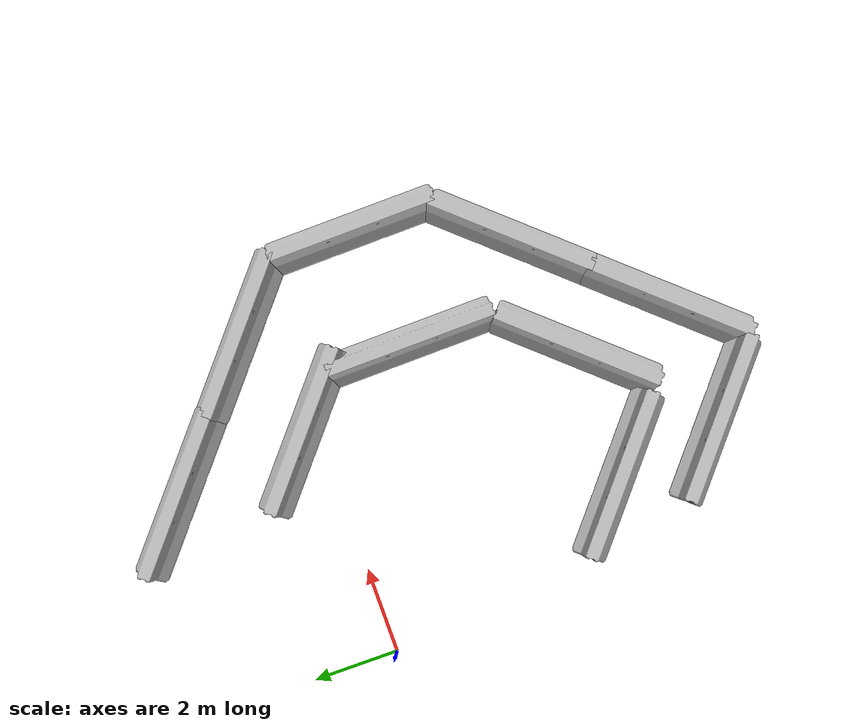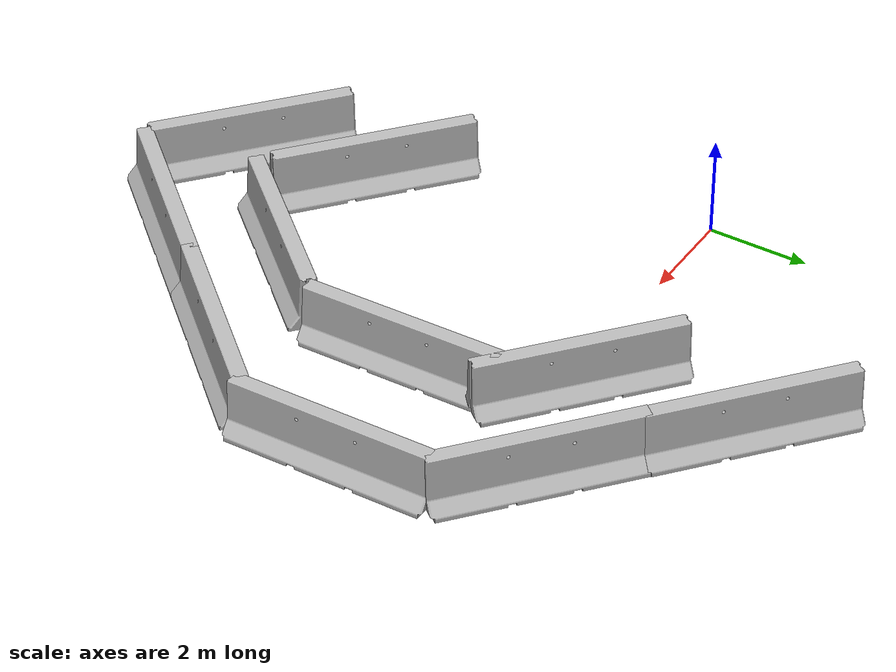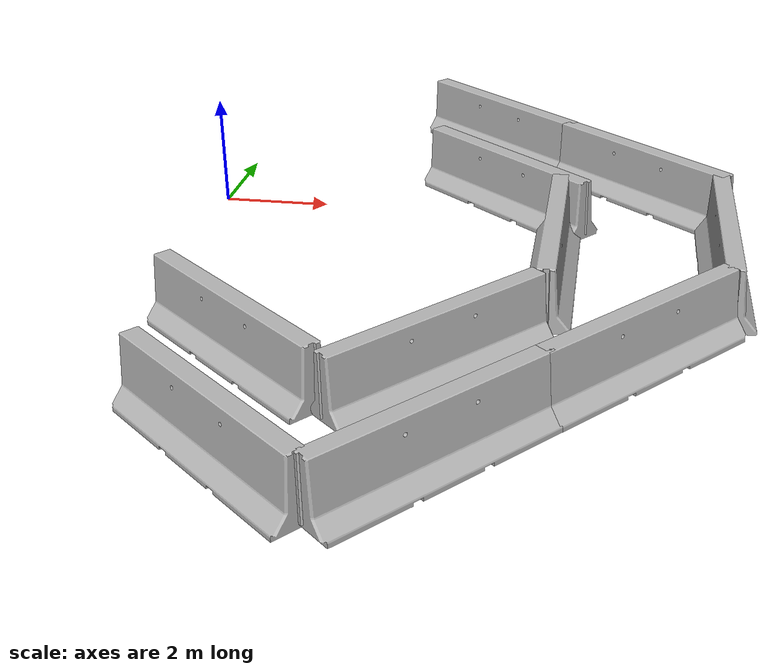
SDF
<sdf version="1.6">
 <world name="default">
  <model name="jersey_barrier_clone_clone">
   <static>1</static>
   <link name="link">
    <visual name="visual">
     <geometry>
      <mesh><uri>model://jersey_barrier/meshes/jersey_barrier.dae</uri><scale>1 1 1</scale></mesh>
     </geometry>
    </visual>
    <collision name="upright">
     <pose>0 0 0.5715 0 -0 0</pose>
     <geometry><box><size>4.06542 0.3063 1.143</size></box></geometry>
    </collision>
    <collision name="base">
     <pose>0 0 0.032258 0 -0 0</pose>
     <geometry><box><size>4.06542 0.8107 0.064516</size></box></geometry>
    </collision>
    <collision name="base2">
     <pose>0 0 0.1 0 -0 0</pose>
     <geometry><box><size>4.06542 0.65 0.1</size></box></geometry>
    </collision>
    <collision name="base3">
     <pose>0 0 0.2 0 -0 0</pose>
     <geometry><box><size>4.06542 0.5 0.1</size></box></geometry>
    </collision>
    <collision name="left-angle">
     <pose>0 -0.224 0.2401 0.9 -0 0</pose>
     <geometry><box><size>4.06542 0.5 0.064516</size></box></geometry>
    </collision>
    <collision name="right-angle">
     <pose>0 0.224 0.2401 -0.9 0 0</pose>
     <geometry><box><size>4.06542 0.5 0.064516</size></box></geometry>
    </collision>
    <velocity_decay><linear>0</linear><angular>0</angular></velocity_decay>
   </link>
   <pose>2.10679 -6.18751 0 0 0 -0.7</pose>
  </model>
  <model name="jersey_barrier_clone_clone_0">
   <static>1</static>
   <link name="link">
    <visual name="visual">
     <geometry>
      <mesh><uri>model://jersey_barrier/meshes/jersey_barrier.dae</uri><scale>1 1 1</scale></mesh>
     </geometry>
    </visual>
    <collision name="upright">
     <pose>0 0 0.5715 0 -0 0</pose>
     <geometry><box><size>4.06542 0.3063 1.143</size></box></geometry>
    </collision>
    <collision name="base">
     <pose>0 0 0.032258 0 -0 0</pose>
     <geometry><box><size>4.06542 0.8107 0.064516</size></box></geometry>
    </collision>
    <collision name="base2">
     <pose>0 0 0.1 0 -0 0</pose>
     <geometry><box><size>4.06542 0.65 0.1</size></box></geometry>
    </collision>
    <collision name="base3">
     <pose>0 0 0.2 0 -0 0</pose>
     <geometry><box><size>4.06542 0.5 0.1</size></box></geometry>
    </collision>
    <collision name="left-angle">
     <pose>0 -0.224 0.2401 0.9 -0 0</pose>
     <geometry><box><size>4.06542 0.5 0.064516</size></box></geometry>
    </collision>
    <collision name="right-angle">
     <pose>0 0.224 0.2401 -0.9 0 0</pose>
     <geometry><box><size>4.06542 0.5 0.064516</size></box></geometry>
    </collision>
    <velocity_decay><linear>0</linear><angular>0</angular></velocity_decay>
   </link>
   <pose>5.17465 -6.23647 0 0 -0 0.84188</pose>
  </model>
  <model name="jersey_barrier_clone_0_clone">
   <static>1</static>
   <link name="link">
    <visual name="visual">
     <geometry>
      <mesh><uri>model://jersey_barrier/meshes/jersey_barrier.dae</uri><scale>1 1 1</scale></mesh>
     </geometry>
    </visual>
    <collision name="upright">
     <pose>0 0 0.5715 0 -0 0</pose>
     <geometry><box><size>4.06542 0.3063 1.143</size></box></geometry>
    </collision>
    <collision name="base">
     <pose>0 0 0.032258 0 -0 0</pose>
     <geometry><box><size>4.06542 0.8107 0.064516</size></box></geometry>
    </collision>
    <collision name="base2">
     <pose>0 0 0.1 0 -0 0</pose>
     <geometry><box><size>4.06542 0.65 0.1</size></box></geometry>
    </collision>
    <collision name="base3">
     <pose>0 0 0.2 0 -0 0</pose>
     <geometry><box><size>4.06542 0.5 0.1</size></box></geometry>
    </collision>
    <collision name="left-angle">
     <pose>0 -0.224 0.2401 0.9 -0 0</pose>
     <geometry><box><size>4.06542 0.5 0.064516</size></box></geometry>
    </collision>
    <collision name="right-angle">
     <pose>0 0.224 0.2401 -0.9 0 0</pose>
     <geometry><box><size>4.06542 0.5 0.064516</size></box></geometry>
    </collision>
    <velocity_decay><linear>0</linear><angular>0</angular></velocity_decay>
   </link>
   <pose>6.59772 -2.68903 0 0 -0 1.58415</pose>
  </model>
  <model name="jersey_barrier_clone_clone_clone">
   <static>1</static>
   <link name="link">
    <visual name="visual">
     <geometry>
      <mesh><uri>model://jersey_barrier/meshes/jersey_barrier.dae</uri><scale>1 1 1</scale></mesh>
     </geometry>
    </visual>
    <collision name="upright">
     <pose>0 0 0.5715 0 -0 0</pose>
     <geometry><box><size>4.06542 0.3063 1.143</size></box></geometry>
    </collision>
    <collision name="base">
     <pose>0 0 0.032258 0 -0 0</pose>
     <geometry><box><size>4.06542 0.8107 0.064516</size></box></geometry>
    </collision>
    <collision name="base2">
     <pose>0 0 0.1 0 -0 0</pose>
     <geometry><box><size>4.06542 0.65 0.1</size></box></geometry>
    </collision>
    <collision name="base3">
     <pose>0 0 0.2 0 -0 0</pose>
     <geometry><box><size>4.06542 0.5 0.1</size></box></geometry>
    </collision>
    <collision name="left-angle">
     <pose>0 -0.224 0.2401 0.9 -0 0</pose>
     <geometry><box><size>4.06542 0.5 0.064516</size></box></geometry>
    </collision>
    <collision name="right-angle">
     <pose>0 0.224 0.2401 -0.9 0 0</pose>
     <geometry><box><size>4.06542 0.5 0.064516</size></box></geometry>
    </collision>
    <velocity_decay><linear>0</linear><angular>0</angular></velocity_decay>
   </link>
   <pose>5.48971 0.29079 0 0 0 -0.7</pose>
  </model>
  <model name="jersey_barrier_clone_clone_clone_clone">
   <static>1</static>
   <link name="link">
    <visual name="visual">
     <geometry>
      <mesh><uri>model://jersey_barrier/meshes/jersey_barrier.dae</uri><scale>1 1 1</scale></mesh>
     </geometry>
    </visual>
    <collision name="upright">
     <pose>0 0 0.5715 0 -0 0</pose>
     <geometry><box><size>4.06542 0.3063 1.143</size></box></geometry>
    </collision>
    <collision name="base">
     <pose>0 0 0.032258 0 -0 0</pose>
     <geometry><box><size>4.06542 0.8107 0.064516</size></box></geometry>
    </collision>
    <collision name="base2">
     <pose>0 0 0.1 0 -0 0</pose>
     <geometry><box><size>4.06542 0.65 0.1</size></box></geometry>
    </collision>
    <collision name="base3">
     <pose>0 0 0.2 0 -0 0</pose>
     <geometry><box><size>4.06542 0.5 0.1</size></box></geometry>
    </collision>
    <collision name="left-angle">
     <pose>0 -0.224 0.2401 0.9 -0 0</pose>
     <geometry><box><size>4.06542 0.5 0.064516</size></box></geometry>
    </collision>
    <collision name="right-angle">
     <pose>0 0.224 0.2401 -0.9 0 0</pose>
     <geometry><box><size>4.06542 0.5 0.064516</size></box></geometry>
    </collision>
    <velocity_decay><linear>0</linear><angular>0</angular></velocity_decay>
   </link>
   <pose>5.08021 3.4531 0 0 0 -0.7</pose>
  </model>
  <model name="jersey_barrier_clone_clone_clone_clone_0">
   <static>1</static>
   <link name="link">
    <visual name="visual">
     <geometry>
      <mesh><uri>model://jersey_barrier/meshes/jersey_barrier.dae</uri><scale>1 1 1</scale></mesh>
     </geometry>
    </visual>
    <collision name="upright">
     <pose>0 0 0.5715 0 -0 0</pose>
     <geometry><box><size>4.06542 0.3063 1.143</size></box></geometry>
    </collision>
    <collision name="base">
     <pose>0 0 0.032258 0 -0 0</pose>
     <geometry><box><size>4.06542 0.8107 0.064516</size></box></geometry>
    </collision>
    <collision name="base2">
     <pose>0 0 0.1 0 -0 0</pose>
     <geometry><box><size>4.06542 0.65 0.1</size></box></geometry>
    </collision>
    <collision name="base3">
     <pose>0 0 0.2 0 -0 0</pose>
     <geometry><box><size>4.06542 0.5 0.1</size></box></geometry>
    </collision>
    <collision name="left-angle">
     <pose>0 -0.224 0.2401 0.9 -0 0</pose>
     <geometry><box><size>4.06542 0.5 0.064516</size></box></geometry>
    </collision>
    <collision name="right-angle">
     <pose>0 0.224 0.2401 -0.9 0 0</pose>
     <geometry><box><size>4.06542 0.5 0.064516</size></box></geometry>
    </collision>
    <velocity_decay><linear>0</linear><angular>0</angular></velocity_decay>
   </link>
   <pose>8.03865 0.939647 0 0 0 -0.7</pose>
  </model>
  <model name="jersey_barrier_clone_0_clone_clone">
   <static>1</static>
   <link name="link">
    <visual name="visual">
     <geometry>
      <mesh><uri>model://jersey_barrier/meshes/jersey_barrier.dae</uri><scale>1 1 1</scale></mesh>
     </geometry>
    </visual>
    <collision name="upright">
     <pose>0 0 0.5715 0 -0 0</pose>
     <geometry><box><size>4.06542 0.3063 1.143</size></box></geometry>
    </collision>
    <collision name="base">
     <pose>0 0 0.032258 0 -0 0</pose>
     <geometry><box><size>4.06542 0.8107 0.064516</size></box></geometry>
    </collision>
    <collision name="base2">
     <pose>0 0 0.1 0 -0 0</pose>
     <geometry><box><size>4.06542 0.65 0.1</size></box></geometry>
    </collision>
    <collision name="base3">
     <pose>0 0 0.2 0 -0 0</pose>
     <geometry><box><size>4.06542 0.5 0.1</size></box></geometry>
    </collision>
    <collision name="left-angle">
     <pose>0 -0.224 0.2401 0.9 -0 0</pose>
     <geometry><box><size>4.06542 0.5 0.064516</size></box></geometry>
    </collision>
    <collision name="right-angle">
     <pose>0 0.224 0.2401 -0.9 0 0</pose>
     <geometry><box><size>4.06542 0.5 0.064516</size></box></geometry>
    </collision>
    <velocity_decay><linear>0</linear><angular>0</angular></velocity_decay>
   </link>
   <pose>9.48634 -2.30239 0 0 -0 1.58415</pose>
  </model>
  <model name="jersey_barrier_clone_clone_0_clone">
   <static>1</static>
   <link name="link">
    <visual name="visual">
     <geometry>
      <mesh><uri>model://jersey_barrier/meshes/jersey_barrier.dae</uri><scale>1 1 1</scale></mesh>
     </geometry>
    </visual>
    <collision name="upright">
     <pose>0 0 0.5715 0 -0 0</pose>
     <geometry><box><size>4.06542 0.3063 1.143</size></box></geometry>
    </collision>
    <collision name="base">
     <pose>0 0 0.032258 0 -0 0</pose>
     <geometry><box><size>4.06542 0.8107 0.064516</size></box></geometry>
    </collision>
    <collision name="base2">
     <pose>0 0 0.1 0 -0 0</pose>
     <geometry><box><size>4.06542 0.65 0.1</size></box></geometry>
    </collision>
    <collision name="base3">
     <pose>0 0 0.2 0 -0 0</pose>
     <geometry><box><size>4.06542 0.5 0.1</size></box></geometry>
    </collision>
    <collision name="left-angle">
     <pose>0 -0.224 0.2401 0.9 -0 0</pose>
     <geometry><box><size>4.06542 0.5 0.064516</size></box></geometry>
    </collision>
    <collision name="right-angle">
     <pose>0 0.224 0.2401 -0.9 0 0</pose>
     <geometry><box><size>4.06542 0.5 0.064516</size></box></geometry>
    </collision>
    <velocity_decay><linear>0</linear><angular>0</angular></velocity_decay>
   </link>
   <pose>8.10934 -5.69013 0 0 -0 0.84188</pose>
  </model>
  <model name="jersey_barrier_clone_clone_0_clone_0">
   <static>1</static>
   <link name="link">
    <visual name="visual">
     <geometry>
      <mesh><uri>model://jersey_barrier/meshes/jersey_barrier.dae</uri><scale>1 1 1</scale></mesh>
     </geometry>
    </visual>
    <collision name="upright">
     <pose>0 0 0.5715 0 -0 0</pose>
     <geometry><box><size>4.06542 0.3063 1.143</size></box></geometry>
    </collision>
    <collision name="base">
     <pose>0 0 0.032258 0 -0 0</pose>
     <geometry><box><size>4.06542 0.8107 0.064516</size></box></geometry>
    </collision>
    <collision name="base2">
     <pose>0 0 0.1 0 -0 0</pose>
     <geometry><box><size>4.06542 0.65 0.1</size></box></geometry>
    </collision>
    <collision name="base3">
     <pose>0 0 0.2 0 -0 0</pose>
     <geometry><box><size>4.06542 0.5 0.1</size></box></geometry>
    </collision>
    <collision name="left-angle">
     <pose>0 -0.224 0.2401 0.9 -0 0</pose>
     <geometry><box><size>4.06542 0.5 0.064516</size></box></geometry>
    </collision>
    <collision name="right-angle">
     <pose>0 0.224 0.2401 -0.9 0 0</pose>
     <geometry><box><size>4.06542 0.5 0.064516</size></box></geometry>
    </collision>
    <velocity_decay><linear>0</linear><angular>0</angular></velocity_decay>
   </link>
   <pose>5.51732 -8.58949 0 0 -0 0.84188</pose>
  </model>
  <model name="jersey_barrier_clone_clone_3">
   <static>1</static>
   <link name="link">
    <visual name="visual">
     <geometry>
      <mesh><uri>model://jersey_barrier/meshes/jersey_barrier.dae</uri><scale>1 1 1</scale></mesh>
     </geometry>
    </visual>
    <collision name="upright">
     <pose>0 0 0.5715 0 -0 0</pose>
     <geometry><box><size>4.06542 0.3063 1.143</size></box></geometry>
    </collision>
    <collision name="base">
     <pose>0 0 0.032258 0 -0 0</pose>
     <geometry><box><size>4.06542 0.8107 0.064516</size></box></geometry>
    </collision>
    <collision name="base2">
     <pose>0 0 0.1 0 -0 0</pose>
     <geometry><box><size>4.06542 0.65 0.1</size></box></geometry>
    </collision>
    <collision name="base3">
     <pose>0 0 0.2 0 -0 0</pose>
     <geometry><box><size>4.06542 0.5 0.1</size></box></geometry>
    </collision>
    <collision name="left-angle">
     <pose>0 -0.224 0.2401 0.9 -0 0</pose>
     <geometry><box><size>4.06542 0.5 0.064516</size></box></geometry>
    </collision>
    <collision name="right-angle">
     <pose>0 0.224 0.2401 -0.9 0 0</pose>
     <geometry><box><size>4.06542 0.5 0.064516</size></box></geometry>
    </collision>
    <velocity_decay><linear>0</linear><angular>0</angular></velocity_decay>
   </link>
   <pose>2.56353 -8.72471 0 0 0 -0.7</pose>
  </model>
 </world>
</sdf>
